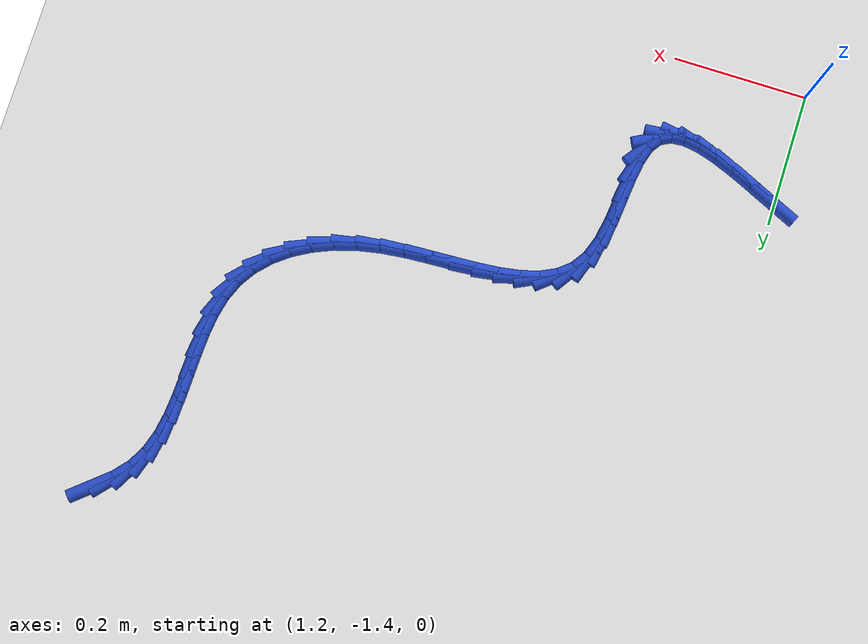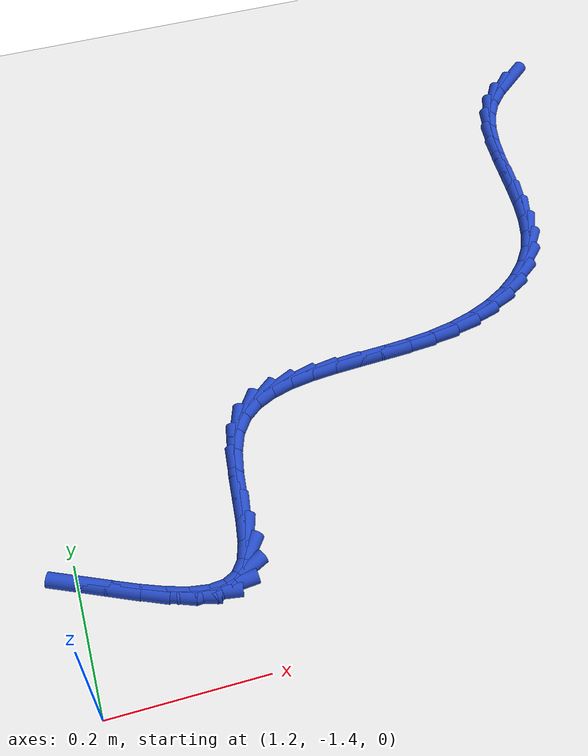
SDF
<sdf version="1.6">
 <world name="default">
  <model name="ground_plane">
   <static>1</static>
   <link name="link">
    <collision name="collision">
     <geometry><plane><normal>0 0 1</normal><size>100 100</size></plane></geometry>
     <surface><friction><ode><mu>100</mu><mu2>50</mu2></ode></friction></surface>
    </collision>
    <visual name="visual">
     <cast_shadows>0</cast_shadows>
     <geometry><plane><normal>0 0 1</normal><size>100 100</size></plane></geometry>
     <material>
      <script><uri>file://media/materials/scripts/gazebo.material</uri><name>Gazebo/WhiteGlow</name></script>
     </material>
    </visual>
   </link>
  </model>
  <model name="line">
   <link name="link_154">
    <pose>2.0190423287887493 -0.5454405352311169 0.01 0 1.57 0.7021714076569835</pose>
    <collision name="collision">
     <geometry><cylinder><radius>0.01</radius><length>0.08</length></cylinder></geometry>
    </collision>
    <visual name="visual">
     <material>
      <script><name>Gazebo/Blue</name><uri>file://media/materials/scripts/gazebo.material</uri></script>
     </material>
     <geometry><cylinder><radius>0.01</radius><length>0.08</length></cylinder></geometry>
    </visual>
   </link>
   <link name="link_155">
    <pose>1.9950673524492664 -0.5657235354334662 0.01 0 1.57 0.8523463013738289</pose>
    <collision name="collision">
     <geometry><cylinder><radius>0.01</radius><length>0.08</length></cylinder></geometry>
    </collision>
    <visual name="visual">
     <material>
      <script><name>Gazebo/Blue</name><uri>file://media/materials/scripts/gazebo.material</uri></script>
     </material>
     <geometry><cylinder><radius>0.01</radius><length>0.08</length></cylinder></geometry>
    </visual>
   </link>
   <link name="link_156">
    <pose>1.9752586737117253 -0.5883793906531878 0.01 0 1.57 1.0636654598842796</pose>
    <collision name="collision">
     <geometry><cylinder><radius>0.01</radius><length>0.08</length></cylinder></geometry>
    </collision>
    <visual name="visual">
     <material>
      <script><name>Gazebo/Blue</name><uri>file://media/materials/scripts/gazebo.material</uri></script>
     </material>
     <geometry><cylinder><radius>0.01</radius><length>0.08</length></cylinder></geometry>
    </visual>
   </link>
   <link name="link_157">
    <pose>1.9610407244077568 -0.6139697485685196 0.01 0 1.57 1.2540620304081678</pose>
    <collision name="collision">
     <geometry><cylinder><radius>0.01</radius><length>0.08</length></cylinder></geometry>
    </collision>
    <visual name="visual">
     <material>
      <script><name>Gazebo/Blue</name><uri>file://media/materials/scripts/gazebo.material</uri></script>
     </material>
     <geometry><cylinder><radius>0.01</radius><length>0.08</length></cylinder></geometry>
    </visual>
   </link>
   <link name="link_158">
    <pose>1.951806266092903 -0.6421434292372904 0.01 0 1.57 1.3931869601968545</pose>
    <collision name="collision">
     <geometry><cylinder><radius>0.01</radius><length>0.08</length></cylinder></geometry>
    </collision>
    <visual name="visual">
     <material>
      <script><name>Gazebo/Blue</name><uri>file://media/materials/scripts/gazebo.material</uri></script>
     </material>
     <geometry><cylinder><radius>0.01</radius><length>0.08</length></cylinder></geometry>
    </visual>
   </link>
   <link name="link_159">
    <pose>1.946393149627569 -0.6722999318430972 0.01 0 1.57 1.4836982788677011</pose>
    <collision name="collision">
     <geometry><cylinder><radius>0.01</radius><length>0.08</length></cylinder></geometry>
    </collision>
    <visual name="visual">
     <material>
      <script><name>Gazebo/Blue</name><uri>file://media/materials/scripts/gazebo.material</uri></script>
     </material>
     <geometry><cylinder><radius>0.01</radius><length>0.08</length></cylinder></geometry>
    </visual>
   </link>
   <link name="link_160">
    <pose>1.943639212782371 -0.7038387496883067 0.01 0 1.57 1.5319268328913334</pose>
    <collision name="collision">
     <geometry><cylinder><radius>0.01</radius><length>0.08</length></cylinder></geometry>
    </collision>
    <visual name="visual">
     <material>
      <script><name>Gazebo/Blue</name><uri>file://media/materials/scripts/gazebo.material</uri></script>
     </material>
     <geometry><cylinder><radius>0.01</radius><length>0.08</length></cylinder></geometry>
    </visual>
   </link>
   <link name="link_161">
    <pose>1.942382293327924 -0.736159376075286 0.01 0 1.57 1.5424344081550703</pose>
    <collision name="collision">
     <geometry><cylinder><radius>0.01</radius><length>0.08</length></cylinder></geometry>
    </collision>
    <visual name="visual">
     <material>
      <script><name>Gazebo/Blue</name><uri>file://media/materials/scripts/gazebo.material</uri></script>
     </material>
     <geometry><cylinder><radius>0.01</radius><length>0.08</length></cylinder></geometry>
    </visual>
   </link>
   <link name="link_162">
    <pose>1.9414602290348466 -0.7686613043064026 0.01 0 1.57 1.5163233728208483</pose>
    <collision name="collision">
     <geometry><cylinder><radius>0.01</radius><length>0.08</length></cylinder></geometry>
    </collision>
    <visual name="visual">
     <material>
      <script><name>Gazebo/Blue</name><uri>file://media/materials/scripts/gazebo.material</uri></script>
     </material>
     <geometry><cylinder><radius>0.01</radius><length>0.08</length></cylinder></geometry>
    </visual>
   </link>
   <link name="link_163">
    <pose>1.9397108576737532 -0.8007440276840226 0.01 0 1.57 1.451009462340937</pose>
    <collision name="collision">
     <geometry><cylinder><radius>0.01</radius><length>0.08</length></cylinder></geometry>
    </collision>
    <visual name="visual">
     <material>
      <script><name>Gazebo/Blue</name><uri>file://media/materials/scripts/gazebo.material</uri></script>
     </material>
     <geometry><cylinder><radius>0.01</radius><length>0.08</length></cylinder></geometry>
    </visual>
   </link>
   <link name="link_164">
    <pose>1.9359720170152606 -0.8318070395105135 0.01 0 1.57 1.3409045984195147</pose>
    <collision name="collision">
     <geometry><cylinder><radius>0.01</radius><length>0.08</length></cylinder></geometry>
    </collision>
    <visual name="visual">
     <material>
      <script><name>Gazebo/Blue</name><uri>file://media/materials/scripts/gazebo.material</uri></script>
     </material>
     <geometry><cylinder><radius>0.01</radius><length>0.08</length></cylinder></geometry>
    </visual>
   </link>
   <link name="link_165">
    <pose>1.929081544829985 -0.861249833088243 0.01 0 1.57 1.1805117850327869</pose>
    <collision name="collision">
     <geometry><cylinder><radius>0.01</radius><length>0.08</length></cylinder></geometry>
    </collision>
    <visual name="visual">
     <material>
      <script><name>Gazebo/Blue</name><uri>file://media/materials/scripts/gazebo.material</uri></script>
     </material>
     <geometry><cylinder><radius>0.01</radius><length>0.08</length></cylinder></geometry>
    </visual>
   </link>
   <link name="link_166">
    <pose>1.9178821336951906 -0.8884733367846335 0.01 0 1.57 0.9902427083852551</pose>
    <collision name="collision">
     <geometry><cylinder><radius>0.01</radius><length>0.08</length></cylinder></geometry>
    </collision>
    <visual name="visual">
     <material>
      <script><name>Gazebo/Blue</name><uri>file://media/materials/scripts/gazebo.material</uri></script>
     </material>
     <geometry><cylinder><radius>0.01</radius><length>0.08</length></cylinder></geometry>
    </visual>
   </link>
   <link name="link_167">
    <pose>1.901766656954942 -0.9130411106126132 0.01 0 1.57 0.8136169052321115</pose>
    <collision name="collision">
     <geometry><cylinder><radius>0.01</radius><length>0.08</length></cylinder></geometry>
    </collision>
    <visual name="visual">
     <material>
      <script><name>Gazebo/Blue</name><uri>file://media/materials/scripts/gazebo.material</uri></script>
     </material>
     <geometry><cylinder><radius>0.01</radius><length>0.08</length></cylinder></geometry>
    </visual>
   </link>
   <link name="link_168">
    <pose>1.881177049310264 -0.9348268137107238 0.01 0 1.57 0.6573073186779652</pose>
    <collision name="collision">
     <geometry><cylinder><radius>0.01</radius><length>0.08</length></cylinder></geometry>
    </collision>
    <visual name="visual">
     <material>
      <script><name>Gazebo/Blue</name><uri>file://media/materials/scripts/gazebo.material</uri></script>
     </material>
     <geometry><cylinder><radius>0.01</radius><length>0.08</length></cylinder></geometry>
    </visual>
   </link>
   <link name="link_169">
    <pose>1.8566731021593068 -0.9537389432739143 0.01 0 1.57 0.5199011113132503</pose>
    <collision name="collision">
     <geometry><cylinder><radius>0.01</radius><length>0.08</length></cylinder></geometry>
    </collision>
    <visual name="visual">
     <material>
      <script><name>Gazebo/Blue</name><uri>file://media/materials/scripts/gazebo.material</uri></script>
     </material>
     <geometry><cylinder><radius>0.01</radius><length>0.08</length></cylinder></geometry>
    </visual>
   </link>
   <link name="link_170">
    <pose>1.828814606900221 -0.9696859964971319 0.01 0 1.57 0.3980746085952867</pose>
    <collision name="collision">
     <geometry><cylinder><radius>0.01</radius><length>0.08</length></cylinder></geometry>
    </collision>
    <visual name="visual">
     <material>
      <script><name>Gazebo/Blue</name><uri>file://media/materials/scripts/gazebo.material</uri></script>
     </material>
     <geometry><cylinder><radius>0.01</radius><length>0.08</length></cylinder></geometry>
    </visual>
   </link>
   <link name="link_171">
    <pose>1.798161354931157 -0.9825764705753248 0.01 0 1.57 0.2879921387804159</pose>
    <collision name="collision">
     <geometry><cylinder><radius>0.01</radius><length>0.08</length></cylinder></geometry>
    </collision>
    <visual name="visual">
     <material>
      <script><name>Gazebo/Blue</name><uri>file://media/materials/scripts/gazebo.material</uri></script>
     </material>
     <geometry><cylinder><radius>0.01</radius><length>0.08</length></cylinder></geometry>
    </visual>
   </link>
   <link name="link_172">
    <pose>1.765273137650265 -0.9923188627034417 0.01 0 1.57 0.18798406866312037</pose>
    <collision name="collision">
     <geometry><cylinder><radius>0.01</radius><length>0.08</length></cylinder></geometry>
    </collision>
    <visual name="visual">
     <material>
      <script><name>Gazebo/Blue</name><uri>file://media/materials/scripts/gazebo.material</uri></script>
     </material>
     <geometry><cylinder><radius>0.01</radius><length>0.08</length></cylinder></geometry>
    </visual>
   </link>
   <link name="link_173">
    <pose>1.7307170118463164 -0.9988924797149944 0.01 0 1.57 0.1119707088722067</pose>
    <collision name="collision">
     <geometry><cylinder><radius>0.01</radius><length>0.08</length></cylinder></geometry>
    </collision>
    <visual name="visual">
     <material>
      <script><name>Gazebo/Blue</name><uri>file://media/materials/scripts/gazebo.material</uri></script>
     </material>
     <geometry><cylinder><radius>0.01</radius><length>0.08</length></cylinder></geometry>
    </visual>
   </link>
   <link name="link_174">
    <pose>1.6951234467542795 -1.0028946561078256 0.01 0 1.57 0.06516096756469753</pose>
    <collision name="collision">
     <geometry><cylinder><radius>0.01</radius><length>0.08</length></cylinder></geometry>
    </collision>
    <visual name="visual">
     <material>
      <script><name>Gazebo/Blue</name><uri>file://media/materials/scripts/gazebo.material</uri></script>
     </material>
     <geometry><cylinder><radius>0.01</radius><length>0.08</length></cylinder></geometry>
    </visual>
   </link>
   <link name="link_175">
    <pose>1.659155637298618 -1.0052416760916187 0.01 0 1.57 0.045117049134181034</pose>
    <collision name="collision">
     <geometry><cylinder><radius>0.01</radius><length>0.08</length></cylinder></geometry>
    </collision>
    <visual name="visual">
     <material>
      <script><name>Gazebo/Blue</name><uri>file://media/materials/scripts/gazebo.material</uri></script>
     </material>
     <geometry><cylinder><radius>0.01</radius><length>0.08</length></cylinder></geometry>
    </visual>
   </link>
   <link name="link_176">
    <pose>1.6234770511110164 -1.0068524817234894 0.01 0 1.57 0.051602445148306454</pose>
    <collision name="collision">
     <geometry><cylinder><radius>0.01</radius><length>0.08</length></cylinder></geometry>
    </collision>
    <visual name="visual">
     <material>
      <script><name>Gazebo/Blue</name><uri>file://media/materials/scripts/gazebo.material</uri></script>
     </material>
     <geometry><cylinder><radius>0.01</radius><length>0.08</length></cylinder></geometry>
    </visual>
   </link>
   <link name="link_177">
    <pose>1.588751155823159 -1.008646015060553 0.01 0 1.57 0.08722079771409612</pose>
    <collision name="collision">
     <geometry><cylinder><radius>0.01</radius><length>0.08</length></cylinder></geometry>
    </collision>
    <visual name="visual">
     <material>
      <script><name>Gazebo/Blue</name><uri>file://media/materials/scripts/gazebo.material</uri></script>
     </material>
     <geometry><cylinder><radius>0.01</radius><length>0.08</length></cylinder></geometry>
    </visual>
   </link>
   <link name="link_178">
    <pose>1.5556414190667316 -1.011541218159926 0.01 0 1.57 0.15811748290415775</pose>
    <collision name="collision">
     <geometry><cylinder><radius>0.01</radius><length>0.08</length></cylinder></geometry>
    </collision>
    <visual name="visual">
     <material>
      <script><name>Gazebo/Blue</name><uri>file://media/materials/scripts/gazebo.material</uri></script>
     </material>
     <geometry><cylinder><radius>0.01</radius><length>0.08</length></cylinder></geometry>
    </visual>
   </link>
   <link name="link_179">
    <pose>1.5248113084734176 -1.0164570330787237 0.01 0 1.57 0.2745709992052627</pose>
    <collision name="collision">
     <geometry><cylinder><radius>0.01</radius><length>0.08</length></cylinder></geometry>
    </collision>
    <visual name="visual">
     <material>
      <script><name>Gazebo/Blue</name><uri>file://media/materials/scripts/gazebo.material</uri></script>
     </material>
     <geometry><cylinder><radius>0.01</radius><length>0.08</length></cylinder></geometry>
    </visual>
   </link>
   <link name="link_180">
    <pose>1.4969242916749033 -1.0243124018740621 0.01 0 1.57 0.44950124305947964</pose>
    <collision name="collision">
     <geometry><cylinder><radius>0.01</radius><length>0.08</length></cylinder></geometry>
    </collision>
    <visual name="visual">
     <material>
      <script><name>Gazebo/Blue</name><uri>file://media/materials/scripts/gazebo.material</uri></script>
     </material>
     <geometry><cylinder><radius>0.01</radius><length>0.08</length></cylinder></geometry>
    </visual>
   </link>
   <link name="link_181">
    <pose>1.4726438363028715 -1.0360262666030573 0.01 0 1.57 0.6892854351503854</pose>
    <collision name="collision">
     <geometry><cylinder><radius>0.01</radius><length>0.08</length></cylinder></geometry>
    </collision>
    <visual name="visual">
     <material>
      <script><name>Gazebo/Blue</name><uri>file://media/materials/scripts/gazebo.material</uri></script>
     </material>
     <geometry><cylinder><radius>0.01</radius><length>0.08</length></cylinder></geometry>
    </visual>
   </link>
   <link name="link_182">
    <pose>1.45263340998901 -1.0525175693228246 0.01 0 1.57 0.9739493431243332</pose>
    <collision name="collision">
     <geometry><cylinder><radius>0.01</radius><length>0.08</length></cylinder></geometry>
    </collision>
    <visual name="visual">
     <material>
      <script><name>Gazebo/Blue</name><uri>file://media/materials/scripts/gazebo.material</uri></script>
     </material>
     <geometry><cylinder><radius>0.01</radius><length>0.08</length></cylinder></geometry>
    </visual>
   </link>
   <link name="link_183">
    <pose>1.4375564803543086 -1.074705252075269 0.01 0 1.57 1.2342590308164418</pose>
    <collision name="collision">
     <geometry><cylinder><radius>0.01</radius><length>0.08</length></cylinder></geometry>
    </collision>
    <visual name="visual">
     <material>
      <script><name>Gazebo/Blue</name><uri>file://media/materials/scripts/gazebo.material</uri></script>
     </material>
     <geometry><cylinder><radius>0.01</radius><length>0.08</length></cylinder></geometry>
    </visual>
   </link>
   <link name="link_184">
    <pose>1.4276781350347227 -1.1029415490687364 0.01 0 1.57 1.387815834571569</pose>
    <collision name="collision">
     <geometry><cylinder><radius>0.01</radius><length>0.08</length></cylinder></geometry>
    </collision>
    <visual name="visual">
     <material>
      <script><name>Gazebo/Blue</name><uri>file://media/materials/scripts/gazebo.material</uri></script>
     </material>
     <geometry><cylinder><radius>0.01</radius><length>0.08</length></cylinder></geometry>
    </visual>
   </link>
   <link name="link_185">
    <pose>1.4216842334896738 -1.1353321936525158 0.01 0 1.57 1.4593677140189831</pose>
    <collision name="collision">
     <geometry><cylinder><radius>0.01</radius><length>0.08</length></cylinder></geometry>
    </collision>
    <visual name="visual">
     <material>
      <script><name>Gazebo/Blue</name><uri>file://media/materials/scripts/gazebo.material</uri></script>
     </material>
     <geometry><cylinder><radius>0.01</radius><length>0.08</length></cylinder></geometry>
    </visual>
   </link>
   <link name="link_186">
    <pose>1.4178693690886879 -1.1694263310779025 0.01 0 1.57 1.4709330139561965</pose>
    <collision name="collision">
     <geometry><cylinder><radius>0.01</radius><length>0.08</length></cylinder></geometry>
    </collision>
    <visual name="visual">
     <material>
      <script><name>Gazebo/Blue</name><uri>file://media/materials/scripts/gazebo.material</uri></script>
     </material>
     <geometry><cylinder><radius>0.01</radius><length>0.08</length></cylinder></geometry>
    </visual>
   </link>
   <link name="link_187">
    <pose>1.4145281352012895 -1.2027731065961917 0.01 0 1.57 1.4202612702294526</pose>
    <collision name="collision">
     <geometry><cylinder><radius>0.01</radius><length>0.08</length></cylinder></geometry>
    </collision>
    <visual name="visual">
     <material>
      <script><name>Gazebo/Blue</name><uri>file://media/materials/scripts/gazebo.material</uri></script>
     </material>
     <geometry><cylinder><radius>0.01</radius><length>0.08</length></cylinder></geometry>
    </visual>
   </link>
   <link name="link_188">
    <pose>1.4099551251970042 -1.2329216654586799 0.01 0 1.57 1.2733459121780142</pose>
    <collision name="collision">
     <geometry><cylinder><radius>0.01</radius><length>0.08</length></cylinder></geometry>
    </collision>
    <visual name="visual">
     <material>
      <script><name>Gazebo/Blue</name><uri>file://media/materials/scripts/gazebo.material</uri></script>
     </material>
     <geometry><cylinder><radius>0.01</radius><length>0.08</length></cylinder></geometry>
    </visual>
   </link>
   <link name="link_189">
    <pose>1.4024449324453563 -1.2574211529166597 0.01 0 1.57 0.9463871507198733</pose>
    <collision name="collision">
     <geometry><cylinder><radius>0.01</radius><length>0.08</length></cylinder></geometry>
    </collision>
    <visual name="visual">
     <material>
      <script><name>Gazebo/Blue</name><uri>file://media/materials/scripts/gazebo.material</uri></script>
     </material>
     <geometry><cylinder><radius>0.01</radius><length>0.08</length></cylinder></geometry>
    </visual>
   </link>
   <link name="link_190">
    <pose>1.3904477038322665 -1.2740704093292086 0.01 0 1.57 0.48359779922715407</pose>
    <collision name="collision">
     <geometry><cylinder><radius>0.01</radius><length>0.08</length></cylinder></geometry>
    </collision>
    <visual name="visual">
     <material>
      <script><name>Gazebo/Blue</name><uri>file://media/materials/scripts/gazebo.material</uri></script>
     </material>
     <geometry><cylinder><radius>0.01</radius><length>0.08</length></cylinder></geometry>
    </visual>
   </link>
   <link name="link_191">
    <pose>1.3737624035549298 -1.2828334018344232 0.01 0 1.57 0.09320949923200904</pose>
    <collision name="collision">
     <geometry><cylinder><radius>0.01</radius><length>0.08</length></cylinder></geometry>
    </collision>
    <visual name="visual">
     <material>
      <script><name>Gazebo/Blue</name><uri>file://media/materials/scripts/gazebo.material</uri></script>
     </material>
     <geometry><cylinder><radius>0.01</radius><length>0.08</length></cylinder></geometry>
    </visual>
   </link>
   <link name="link_192">
    <pose>1.3528803481426899 -1.2847854642190293 0.01 0 1.57 -0.1523564511436953</pose>
    <collision name="collision">
     <geometry><cylinder><radius>0.01</radius><length>0.08</length></cylinder></geometry>
    </collision>
    <visual name="visual">
     <material>
      <script><name>Gazebo/Blue</name><uri>file://media/materials/scripts/gazebo.material</uri></script>
     </material>
     <geometry><cylinder><radius>0.01</radius><length>0.08</length></cylinder></geometry>
    </visual>
   </link>
   <link name="link_193">
    <pose>1.3282985123384918 -1.281011012856171 0.01 0 1.57 -0.2941343649836791</pose>
    <collision name="collision">
     <geometry><cylinder><radius>0.01</radius><length>0.08</length></cylinder></geometry>
    </collision>
    <visual name="visual">
     <material>
      <script><name>Gazebo/Blue</name><uri>file://media/materials/scripts/gazebo.material</uri></script>
     </material>
     <geometry><cylinder><radius>0.01</radius><length>0.08</length></cylinder></geometry>
    </visual>
   </link>
   <link name="link_194">
    <pose>1.300513870885282 -1.2725944641189935 0.01 0 1.57 -0.3742151287105458</pose>
    <collision name="collision">
     <geometry><cylinder><radius>0.01</radius><length>0.08</length></cylinder></geometry>
    </collision>
    <visual name="visual">
     <material>
      <script><name>Gazebo/Blue</name><uri>file://media/materials/scripts/gazebo.material</uri></script>
     </material>
     <geometry><cylinder><radius>0.01</radius><length>0.08</length></cylinder></geometry>
    </visual>
   </link>
   <link name="link_195">
    <pose>1.2700233985260052 -1.2606202343806407 0.01 0 1.57 -0.4160377385693056</pose>
    <collision name="collision">
     <geometry><cylinder><radius>0.01</radius><length>0.08</length></cylinder></geometry>
    </collision>
    <visual name="visual">
     <material>
      <script><name>Gazebo/Blue</name><uri>file://media/materials/scripts/gazebo.material</uri></script>
     </material>
     <geometry><cylinder><radius>0.01</radius><length>0.08</length></cylinder></geometry>
    </visual>
   </link>
   <link name="link_196">
    <pose>1.2373240700036077 -1.2461727400142577 0.01 0 1.57 -0.4313110848309455</pose>
    <collision name="collision">
     <geometry><cylinder><radius>0.01</radius><length>0.08</length></cylinder></geometry>
    </collision>
    <visual name="visual">
     <material>
      <script><name>Gazebo/Blue</name><uri>file://media/materials/scripts/gazebo.material</uri></script>
     </material>
     <geometry><cylinder><radius>0.01</radius><length>0.08</length></cylinder></geometry>
    </visual>
   </link>
   <link name="link_197">
    <pose>1.2029128600610337 -1.2303363973929884 0.01 0 1.57 -0.42539585079709247</pose>
    <collision name="collision">
     <geometry><cylinder><radius>0.01</radius><length>0.08</length></cylinder></geometry>
    </collision>
    <visual name="visual">
     <material>
      <script><name>Gazebo/Blue</name><uri>file://media/materials/scripts/gazebo.material</uri></script>
     </material>
     <geometry><cylinder><radius>0.01</radius><length>0.08</length></cylinder></geometry>
    </visual>
   </link>
  </model>
 </world>
</sdf>
